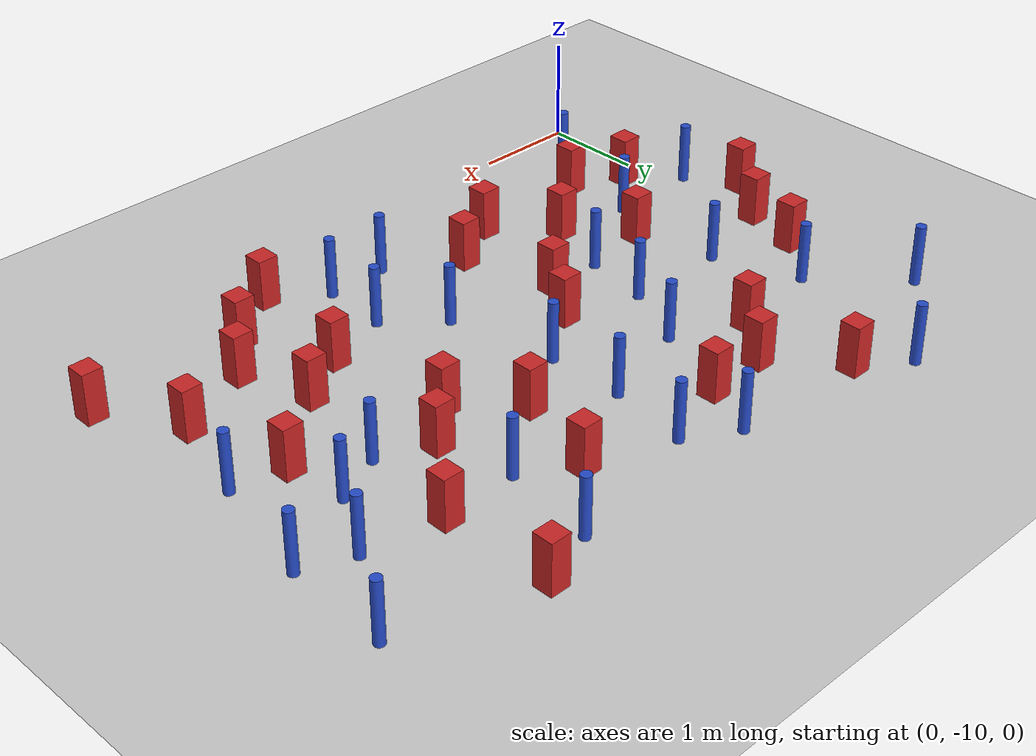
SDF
<sdf version="1.6">
 <world name="default">
  <model name="ground_plane">
   <static>1</static>
   <link name="link">
    <collision name="collision">
     <geometry><plane><normal>0 0 1</normal><size>100 100</size></plane></geometry>
     <surface><friction><ode><mu>100</mu><mu2>50</mu2></ode></friction></surface>
    </collision>
    <visual name="visual">
     <cast_shadows>0</cast_shadows>
     <geometry><plane><normal>0 0 1</normal><size>100 100</size></plane></geometry>
     <material>
      <ambient>1.0 1.0 1.0 1.0</ambient>
      <diffuse>0.8 0.8 0.8 1.0</diffuse>
      <specular>0.01 0.01 0.01 1.000000</specular>
     </material>
    </visual>
   </link>
  </model>
  <model name="pole_obstacle1">
   <static>true</static>
   <pose>3.07167220182 -7.02424409552 7.38925637345e-09 -8.47170692798e-08 1.24976765033e-08 -1.74513093019e-07</pose>
   <link name="link">
    <pose>0 0 0.3 0 -0 0</pose>
    <inertial>
     <mass>1</mass>
     <inertia><ixx>0.145833</ixx><ixy>0</ixy><ixz>0</ixz><iyy>0.145833</iyy><iyz>0</iyz><izz>0.125</izz></inertia>
    </inertial>
    <collision name="collision">
     <geometry><cylinder><radius>0.05</radius><length>.6</length></cylinder></geometry>
    </collision>
    <visual name="visual">
     <geometry><cylinder><radius>0.05</radius><length>.6</length></cylinder></geometry>
     <material>
      <script><name>Gazebo/Blue</name><uri>file://media/materials/scripts/gazebo.material</uri></script>
     </material>
    </visual>
   </link>
  </model>
  <model name="square_post_obstacle6">
   <static>true</static>
   <pose>5.20519081044 -6.04144490822 1.91545236811e-07 -7.35059704564e-06 1.12565212e-07 2.39332434364e-05</pose>
   <link name="link">
    <pose>0 0 0.25 0 -0 0</pose>
    <inertial>
     <mass>100</mass>
     <inertia>
      <ixx>0.166667</ixx>
      <ixy>0</ixy>
      <ixz>0</ixz>
      <iyy>0.166667</iyy>
      <iyz>0</iyz>
      <izz>0.166667</izz>
     </inertia>
    </inertial>
    <collision name="collision"><geometry><box><size>.2 .2 .5</size></box></geometry></collision>
    <visual name="visual">
     <geometry><box><size>.2 .2 .5</size></box></geometry>
     <material>
      <script><name>Gazebo/Red</name><uri>file://media/materials/scripts/gazebo.material</uri></script>
     </material>
    </visual>
   </link>
  </model>
  <model name="pole_obstacle4">
   <static>true</static>
   <pose>-0.179069154487 -8.40646391588 7.38925637345e-09 -8.47170692796e-08 1.24976764775e-08 -1.74513093034e-07</pose>
   <link name="link">
    <pose>0 0 0.3 0 -0 0</pose>
    <inertial>
     <mass>1</mass>
     <inertia><ixx>0.145833</ixx><ixy>0</ixy><ixz>0</ixz><iyy>0.145833</iyy><iyz>0</iyz><izz>0.125</izz></inertia>
    </inertial>
    <collision name="collision">
     <geometry><cylinder><radius>0.05</radius><length>.6</length></cylinder></geometry>
    </collision>
    <visual name="visual">
     <geometry><cylinder><radius>0.05</radius><length>.6</length></cylinder></geometry>
     <material>
      <script><name>Gazebo/Blue</name><uri>file://media/materials/scripts/gazebo.material</uri></script>
     </material>
    </visual>
   </link>
  </model>
  <model name="square_post_obstacle16">
   <static>true</static>
   <pose>1.85319820563 -5.76374676269 1.91545236811e-07 -7.35059704564e-06 1.12565212e-07 2.39332434364e-05</pose>
   <link name="link">
    <pose>0 0 0.25 0 -0 0</pose>
    <inertial>
     <mass>100</mass>
     <inertia>
      <ixx>0.166667</ixx>
      <ixy>0</ixy>
      <ixz>0</ixz>
      <iyy>0.166667</iyy>
      <iyz>0</iyz>
      <izz>0.166667</izz>
     </inertia>
    </inertial>
    <collision name="collision"><geometry><box><size>.2 .2 .5</size></box></geometry></collision>
    <visual name="visual">
     <geometry><box><size>.2 .2 .5</size></box></geometry>
     <material>
      <script><name>Gazebo/Red</name><uri>file://media/materials/scripts/gazebo.material</uri></script>
     </material>
    </visual>
   </link>
  </model>
  <model name="square_post_obstacle19">
   <static>true</static>
   <pose>5.15073080693 -4.96994061939 1.91545236811e-07 -7.35059704564e-06 1.12565212e-07 2.39332434364e-05</pose>
   <link name="link">
    <pose>0 0 0.25 0 -0 0</pose>
    <inertial>
     <mass>100</mass>
     <inertia>
      <ixx>0.166667</ixx>
      <ixy>0</ixy>
      <ixz>0</ixz>
      <iyy>0.166667</iyy>
      <iyz>0</iyz>
      <izz>0.166667</izz>
     </inertia>
    </inertial>
    <collision name="collision"><geometry><box><size>.2 .2 .5</size></box></geometry></collision>
    <visual name="visual">
     <geometry><box><size>.2 .2 .5</size></box></geometry>
     <material>
      <script><name>Gazebo/Red</name><uri>file://media/materials/scripts/gazebo.material</uri></script>
     </material>
    </visual>
   </link>
  </model>
  <model name="pole_obstacle13">
   <static>true</static>
   <pose>3.05042973627 -6.27608102626 7.38925637345e-09 -8.47170692798e-08 1.24976765033e-08 -1.74513093019e-07</pose>
   <link name="link">
    <pose>0 0 0.3 0 -0 0</pose>
    <inertial>
     <mass>1</mass>
     <inertia><ixx>0.145833</ixx><ixy>0</ixy><ixz>0</ixz><iyy>0.145833</iyy><iyz>0</iyz><izz>0.125</izz></inertia>
    </inertial>
    <collision name="collision">
     <geometry><cylinder><radius>0.05</radius><length>.6</length></cylinder></geometry>
    </collision>
    <visual name="visual">
     <geometry><cylinder><radius>0.05</radius><length>.6</length></cylinder></geometry>
     <material>
      <script><name>Gazebo/Blue</name><uri>file://media/materials/scripts/gazebo.material</uri></script>
     </material>
    </visual>
   </link>
  </model>
  <model name="square_post_obstacle22">
   <static>true</static>
   <pose>1.0284544931 -7.94580521152 1.91545236811e-07 -7.35059704564e-06 1.12565212e-07 2.39332434364e-05</pose>
   <link name="link">
    <pose>0 0 0.25 0 -0 0</pose>
    <inertial>
     <mass>100</mass>
     <inertia>
      <ixx>0.166667</ixx>
      <ixy>0</ixy>
      <ixz>0</ixz>
      <iyy>0.166667</iyy>
      <iyz>0</iyz>
      <izz>0.166667</izz>
     </inertia>
    </inertial>
    <collision name="collision"><geometry><box><size>.2 .2 .5</size></box></geometry></collision>
    <visual name="visual">
     <geometry><box><size>.2 .2 .5</size></box></geometry>
     <material>
      <script><name>Gazebo/Red</name><uri>file://media/materials/scripts/gazebo.material</uri></script>
     </material>
    </visual>
   </link>
  </model>
  <model name="square_post_obstacle30">
   <static>true</static>
   <pose>2.54692806546 -7.40260620274 1.91545236811e-07 -7.35059704564e-06 1.12565212e-07 2.39332434364e-05</pose>
   <link name="link">
    <pose>0 0 0.25 0 -0 0</pose>
    <inertial>
     <mass>100</mass>
     <inertia>
      <ixx>0.166667</ixx>
      <ixy>0</ixy>
      <ixz>0</ixz>
      <iyy>0.166667</iyy>
      <iyz>0</iyz>
      <izz>0.166667</izz>
     </inertia>
    </inertial>
    <collision name="collision"><geometry><box><size>.2 .2 .5</size></box></geometry></collision>
    <visual name="visual">
     <geometry><box><size>.2 .2 .5</size></box></geometry>
     <material>
      <script><name>Gazebo/Red</name><uri>file://media/materials/scripts/gazebo.material</uri></script>
     </material>
    </visual>
   </link>
  </model>
  <model name="pole_obstacle27">
   <static>true</static>
   <pose>1.7917339287 -7.20234265877 7.38925637345e-09 -8.47170692799e-08 1.24976765033e-08 -1.74513093018e-07</pose>
   <link name="link">
    <pose>0 0 0.3 0 -0 0</pose>
    <inertial>
     <mass>1</mass>
     <inertia><ixx>0.145833</ixx><ixy>0</ixy><ixz>0</ixz><iyy>0.145833</iyy><iyz>0</iyz><izz>0.125</izz></inertia>
    </inertial>
    <collision name="collision">
     <geometry><cylinder><radius>0.05</radius><length>.6</length></cylinder></geometry>
    </collision>
    <visual name="visual">
     <geometry><cylinder><radius>0.05</radius><length>.6</length></cylinder></geometry>
     <material>
      <script><name>Gazebo/Blue</name><uri>file://media/materials/scripts/gazebo.material</uri></script>
     </material>
    </visual>
   </link>
  </model>
  <model name="pole_obstacle33">
   <static>true</static>
   <pose>3.16674399643 -5.49947386391 7.38925637345e-09 -8.47170692798e-08 1.24976765033e-08 -1.74513093019e-07</pose>
   <link name="link">
    <pose>0 0 0.3 0 -0 0</pose>
    <inertial>
     <mass>1</mass>
     <inertia><ixx>0.145833</ixx><ixy>0</ixy><ixz>0</ixz><iyy>0.145833</iyy><iyz>0</iyz><izz>0.125</izz></inertia>
    </inertial>
    <collision name="collision">
     <geometry><cylinder><radius>0.05</radius><length>.6</length></cylinder></geometry>
    </collision>
    <visual name="visual">
     <geometry><cylinder><radius>0.05</radius><length>.6</length></cylinder></geometry>
     <material>
      <script><name>Gazebo/Blue</name><uri>file://media/materials/scripts/gazebo.material</uri></script>
     </material>
    </visual>
   </link>
  </model>
  <model name="pole_obstacle34">
   <static>true</static>
   <pose>0.72934746978 -8.38764439104 7.38925637345e-09 -8.47170692797e-08 1.249767648e-08 -1.74513093032e-07</pose>
   <link name="link">
    <pose>0 0 0.3 0 -0 0</pose>
    <inertial>
     <mass>1</mass>
     <inertia><ixx>0.145833</ixx><ixy>0</ixy><ixz>0</ixz><iyy>0.145833</iyy><iyz>0</iyz><izz>0.125</izz></inertia>
    </inertial>
    <collision name="collision">
     <geometry><cylinder><radius>0.05</radius><length>.6</length></cylinder></geometry>
    </collision>
    <visual name="visual">
     <geometry><cylinder><radius>0.05</radius><length>.6</length></cylinder></geometry>
     <material>
      <script><name>Gazebo/Blue</name><uri>file://media/materials/scripts/gazebo.material</uri></script>
     </material>
    </visual>
   </link>
  </model>
  <model name="pole_obstacle36">
   <static>true</static>
   <pose>0.872948246072 -4.82727050828 7.38925637345e-09 -8.471706928e-08 1.24976765086e-08 -1.74513093015e-07</pose>
   <link name="link">
    <pose>0 0 0.3 0 -0 0</pose>
    <inertial>
     <mass>1</mass>
     <inertia><ixx>0.145833</ixx><ixy>0</ixy><ixz>0</ixz><iyy>0.145833</iyy><iyz>0</iyz><izz>0.125</izz></inertia>
    </inertial>
    <collision name="collision">
     <geometry><cylinder><radius>0.05</radius><length>.6</length></cylinder></geometry>
    </collision>
    <visual name="visual">
     <geometry><cylinder><radius>0.05</radius><length>.6</length></cylinder></geometry>
     <material>
      <script><name>Gazebo/Blue</name><uri>file://media/materials/scripts/gazebo.material</uri></script>
     </material>
    </visual>
   </link>
  </model>
  <model name="pole_obstacle42">
   <static>true</static>
   <pose>5.59073341891 -6.79634661429 7.38925637345e-09 -8.47170692796e-08 1.24976764786e-08 -1.74513093032e-07</pose>
   <link name="link">
    <pose>0 0 0.3 0 -0 0</pose>
    <inertial>
     <mass>1</mass>
     <inertia><ixx>0.145833</ixx><ixy>0</ixy><ixz>0</ixz><iyy>0.145833</iyy><iyz>0</iyz><izz>0.125</izz></inertia>
    </inertial>
    <collision name="collision">
     <geometry><cylinder><radius>0.05</radius><length>.6</length></cylinder></geometry>
    </collision>
    <visual name="visual">
     <geometry><cylinder><radius>0.05</radius><length>.6</length></cylinder></geometry>
     <material>
      <script><name>Gazebo/Blue</name><uri>file://media/materials/scripts/gazebo.material</uri></script>
     </material>
    </visual>
   </link>
  </model>
  <model name="square_post_obstacle40">
   <static>true</static>
   <pose>1.46371274313 -6.21064876037 1.91545236811e-07 -7.35059704564e-06 1.12565212e-07 2.39332434364e-05</pose>
   <link name="link">
    <pose>0 0 0.25 0 -0 0</pose>
    <inertial>
     <mass>100</mass>
     <inertia>
      <ixx>0.166667</ixx>
      <ixy>0</ixy>
      <ixz>0</ixz>
      <iyy>0.166667</iyy>
      <iyz>0</iyz>
      <izz>0.166667</izz>
     </inertia>
    </inertial>
    <collision name="collision"><geometry><box><size>.2 .2 .5</size></box></geometry></collision>
    <visual name="visual">
     <geometry><box><size>.2 .2 .5</size></box></geometry>
     <material>
      <script><name>Gazebo/Red</name><uri>file://media/materials/scripts/gazebo.material</uri></script>
     </material>
    </visual>
   </link>
  </model>
  <model name="square_post_obstacle43">
   <static>true</static>
   <pose>4.4447152985 -8.29233198857 1.91545236811e-07 -7.35059704564e-06 1.12565212e-07 2.39332434364e-05</pose>
   <link name="link">
    <pose>0 0 0.25 0 -0 0</pose>
    <inertial>
     <mass>100</mass>
     <inertia>
      <ixx>0.166667</ixx>
      <ixy>0</ixy>
      <ixz>0</ixz>
      <iyy>0.166667</iyy>
      <iyz>0</iyz>
      <izz>0.166667</izz>
     </inertia>
    </inertial>
    <collision name="collision"><geometry><box><size>.2 .2 .5</size></box></geometry></collision>
    <visual name="visual">
     <geometry><box><size>.2 .2 .5</size></box></geometry>
     <material>
      <script><name>Gazebo/Red</name><uri>file://media/materials/scripts/gazebo.material</uri></script>
     </material>
    </visual>
   </link>
  </model>
  <model name="pole_obstacle50">
   <static>true</static>
   <pose>-0.202530588919 -5.60241062444 7.38925637345e-09 -8.47170692799e-08 1.2497676507e-08 -1.74513093018e-07</pose>
   <link name="link">
    <pose>0 0 0.3 0 -0 0</pose>
    <inertial>
     <mass>1</mass>
     <inertia><ixx>0.145833</ixx><ixy>0</ixy><ixz>0</ixz><iyy>0.145833</iyy><iyz>0</iyz><izz>0.125</izz></inertia>
    </inertial>
    <collision name="collision">
     <geometry><cylinder><radius>0.05</radius><length>.6</length></cylinder></geometry>
    </collision>
    <visual name="visual">
     <geometry><cylinder><radius>0.05</radius><length>.6</length></cylinder></geometry>
     <material>
      <script><name>Gazebo/Blue</name><uri>file://media/materials/scripts/gazebo.material</uri></script>
     </material>
    </visual>
   </link>
  </model>
  <model name="square_post_obstacle50">
   <static>true</static>
   <pose>5.67406200529 -7.36464617674 1.91545236811e-07 -7.35059704564e-06 1.12565212e-07 2.39332434364e-05</pose>
   <link name="link">
    <pose>0 0 0.25 0 -0 0</pose>
    <inertial>
     <mass>100</mass>
     <inertia>
      <ixx>0.166667</ixx>
      <ixy>0</ixy>
      <ixz>0</ixz>
      <iyy>0.166667</iyy>
      <iyz>0</iyz>
      <izz>0.166667</izz>
     </inertia>
    </inertial>
    <collision name="collision"><geometry><box><size>.2 .2 .5</size></box></geometry></collision>
    <visual name="visual">
     <geometry><box><size>.2 .2 .5</size></box></geometry>
     <material>
      <script><name>Gazebo/Red</name><uri>file://media/materials/scripts/gazebo.material</uri></script>
     </material>
    </visual>
   </link>
  </model>
  <model name="pole_obstacle57">
   <static>true</static>
   <pose>6.16708319687 -7.48787995456 7.38925637345e-09 -8.47170692796e-08 1.24976764786e-08 -1.74513093032e-07</pose>
   <link name="link">
    <pose>0 0 0.3 0 -0 0</pose>
    <inertial>
     <mass>1</mass>
     <inertia><ixx>0.145833</ixx><ixy>0</ixy><ixz>0</ixz><iyy>0.145833</iyy><iyz>0</iyz><izz>0.125</izz></inertia>
    </inertial>
    <collision name="collision">
     <geometry><cylinder><radius>0.05</radius><length>.6</length></cylinder></geometry>
    </collision>
    <visual name="visual">
     <geometry><cylinder><radius>0.05</radius><length>.6</length></cylinder></geometry>
     <material>
      <script><name>Gazebo/Blue</name><uri>file://media/materials/scripts/gazebo.material</uri></script>
     </material>
    </visual>
   </link>
  </model>
  <model name="square_post_obstacle61">
   <static>true</static>
   <pose>1.48745465127 -8.4871591218 1.91545236811e-07 -7.35059704564e-06 1.12565212e-07 2.39332434364e-05</pose>
   <link name="link">
    <pose>0 0 0.25 0 -0 0</pose>
    <inertial>
     <mass>100</mass>
     <inertia>
      <ixx>0.166667</ixx>
      <ixy>0</ixy>
      <ixz>0</ixz>
      <iyy>0.166667</iyy>
      <iyz>0</iyz>
      <izz>0.166667</izz>
     </inertia>
    </inertial>
    <collision name="collision"><geometry><box><size>.2 .2 .5</size></box></geometry></collision>
    <visual name="visual">
     <geometry><box><size>.2 .2 .5</size></box></geometry>
     <material>
      <script><name>Gazebo/Red</name><uri>file://media/materials/scripts/gazebo.material</uri></script>
     </material>
    </visual>
   </link>
  </model>
  <model name="pole_obstacle62">
   <static>true</static>
   <pose>4.58420811512 -5.17796546262 7.38925637345e-09 -8.47170692796e-08 1.24976764786e-08 -1.74513093032e-07</pose>
   <link name="link">
    <pose>0 0 0.3 0 -0 0</pose>
    <inertial>
     <mass>1</mass>
     <inertia><ixx>0.145833</ixx><ixy>0</ixy><ixz>0</ixz><iyy>0.145833</iyy><iyz>0</iyz><izz>0.125</izz></inertia>
    </inertial>
    <collision name="collision">
     <geometry><cylinder><radius>0.05</radius><length>.6</length></cylinder></geometry>
    </collision>
    <visual name="visual">
     <geometry><cylinder><radius>0.05</radius><length>.6</length></cylinder></geometry>
     <material>
      <script><name>Gazebo/Blue</name><uri>file://media/materials/scripts/gazebo.material</uri></script>
     </material>
    </visual>
   </link>
  </model>
  <model name="square_post_obstacle70">
   <static>true</static>
   <pose>5.16973890118 -8.66780034604 1.91545236811e-07 -7.35059704564e-06 1.12565212e-07 2.39332434364e-05</pose>
   <link name="link">
    <pose>0 0 0.25 0 -0 0</pose>
    <inertial>
     <mass>100</mass>
     <inertia>
      <ixx>0.166667</ixx>
      <ixy>0</ixy>
      <ixz>0</ixz>
      <iyy>0.166667</iyy>
      <iyz>0</iyz>
      <izz>0.166667</izz>
     </inertia>
    </inertial>
    <collision name="collision"><geometry><box><size>.2 .2 .5</size></box></geometry></collision>
    <visual name="visual">
     <geometry><box><size>.2 .2 .5</size></box></geometry>
     <material>
      <script><name>Gazebo/Red</name><uri>file://media/materials/scripts/gazebo.material</uri></script>
     </material>
    </visual>
   </link>
  </model>
  <model name="square_post_obstacle71">
   <static>true</static>
   <pose>1.34676959427 -5.13734319269 1.91545236811e-07 -7.35059704564e-06 1.12565212e-07 2.39332434364e-05</pose>
   <link name="link">
    <pose>0 0 0.25 0 -0 0</pose>
    <inertial>
     <mass>100</mass>
     <inertia>
      <ixx>0.166667</ixx>
      <ixy>0</ixy>
      <ixz>0</ixz>
      <iyy>0.166667</iyy>
      <iyz>0</iyz>
      <izz>0.166667</izz>
     </inertia>
    </inertial>
    <collision name="collision"><geometry><box><size>.2 .2 .5</size></box></geometry></collision>
    <visual name="visual">
     <geometry><box><size>.2 .2 .5</size></box></geometry>
     <material>
      <script><name>Gazebo/Red</name><uri>file://media/materials/scripts/gazebo.material</uri></script>
     </material>
    </visual>
   </link>
  </model>
  <model name="pole_obstacle78">
   <static>true</static>
   <pose>3.78217881104 -8.51591306245 7.38925637345e-09 -8.47170692793e-08 1.24976764408e-08 -1.74513093041e-07</pose>
   <link name="link">
    <pose>0 0 0.3 0 -0 0</pose>
    <inertial>
     <mass>1</mass>
     <inertia><ixx>0.145833</ixx><ixy>0</ixy><ixz>0</ixz><iyy>0.145833</iyy><iyz>0</iyz><izz>0.125</izz></inertia>
    </inertial>
    <collision name="collision">
     <geometry><cylinder><radius>0.05</radius><length>.6</length></cylinder></geometry>
    </collision>
    <visual name="visual">
     <geometry><cylinder><radius>0.05</radius><length>.6</length></cylinder></geometry>
     <material>
      <script><name>Gazebo/Blue</name><uri>file://media/materials/scripts/gazebo.material</uri></script>
     </material>
    </visual>
   </link>
  </model>
  <model name="square_post_obstacle77">
   <static>true</static>
   <pose>4.94451475012 -7.9813809898 1.91545236811e-07 -7.35059704564e-06 1.12565212e-07 2.39332434364e-05</pose>
   <link name="link">
    <pose>0 0 0.25 0 -0 0</pose>
    <inertial>
     <mass>100</mass>
     <inertia>
      <ixx>0.166667</ixx>
      <ixy>0</ixy>
      <ixz>0</ixz>
      <iyy>0.166667</iyy>
      <iyz>0</iyz>
      <izz>0.166667</izz>
     </inertia>
    </inertial>
    <collision name="collision"><geometry><box><size>.2 .2 .5</size></box></geometry></collision>
    <visual name="visual">
     <geometry><box><size>.2 .2 .5</size></box></geometry>
     <material>
      <script><name>Gazebo/Red</name><uri>file://media/materials/scripts/gazebo.material</uri></script>
     </material>
    </visual>
   </link>
  </model>
  <model name="pole_obstacle82">
   <static>true</static>
   <pose>3.29477183406 -8.0785001464 7.38925637345e-09 -8.47170692793e-08 1.24976764408e-08 -1.74513093041e-07</pose>
   <link name="link">
    <pose>0 0 0.3 0 -0 0</pose>
    <inertial>
     <mass>1</mass>
     <inertia><ixx>0.145833</ixx><ixy>0</ixy><ixz>0</ixz><iyy>0.145833</iyy><iyz>0</iyz><izz>0.125</izz></inertia>
    </inertial>
    <collision name="collision">
     <geometry><cylinder><radius>0.05</radius><length>.6</length></cylinder></geometry>
    </collision>
    <visual name="visual">
     <geometry><cylinder><radius>0.05</radius><length>.6</length></cylinder></geometry>
     <material>
      <script><name>Gazebo/Blue</name><uri>file://media/materials/scripts/gazebo.material</uri></script>
     </material>
    </visual>
   </link>
  </model>
  <model name="square_post_obstacle80">
   <static>true</static>
   <pose>2.25746732367 -7.83495870771 1.91545236811e-07 -7.35059704564e-06 1.12565212e-07 2.39332434364e-05</pose>
   <link name="link">
    <pose>0 0 0.25 0 -0 0</pose>
    <inertial>
     <mass>100</mass>
     <inertia>
      <ixx>0.166667</ixx>
      <ixy>0</ixy>
      <ixz>0</ixz>
      <iyy>0.166667</iyy>
      <iyz>0</iyz>
      <izz>0.166667</izz>
     </inertia>
    </inertial>
    <collision name="collision"><geometry><box><size>.2 .2 .5</size></box></geometry></collision>
    <visual name="visual">
     <geometry><box><size>.2 .2 .5</size></box></geometry>
     <material>
      <script><name>Gazebo/Red</name><uri>file://media/materials/scripts/gazebo.material</uri></script>
     </material>
    </visual>
   </link>
  </model>
  <model name="pole_obstacle87">
   <static>true</static>
   <pose>4.45620937504 -6.08960041685 7.38925637345e-09 -8.47170692796e-08 1.24976764786e-08 -1.74513093032e-07</pose>
   <link name="link">
    <pose>0 0 0.3 0 -0 0</pose>
    <inertial>
     <mass>1</mass>
     <inertia><ixx>0.145833</ixx><ixy>0</ixy><ixz>0</ixz><iyy>0.145833</iyy><iyz>0</iyz><izz>0.125</izz></inertia>
    </inertial>
    <collision name="collision">
     <geometry><cylinder><radius>0.05</radius><length>.6</length></cylinder></geometry>
    </collision>
    <visual name="visual">
     <geometry><cylinder><radius>0.05</radius><length>.6</length></cylinder></geometry>
     <material>
      <script><name>Gazebo/Blue</name><uri>file://media/materials/scripts/gazebo.material</uri></script>
     </material>
    </visual>
   </link>
  </model>
  <model name="square_post_obstacle90">
   <static>true</static>
   <pose>4.82314137201 -9.10501403395 1.91545236811e-07 -7.35059704564e-06 1.12565212e-07 2.39332434364e-05</pose>
   <link name="link">
    <pose>0 0 0.25 0 -0 0</pose>
    <inertial>
     <mass>100</mass>
     <inertia>
      <ixx>0.166667</ixx>
      <ixy>0</ixy>
      <ixz>0</ixz>
      <iyy>0.166667</iyy>
      <iyz>0</iyz>
      <izz>0.166667</izz>
     </inertia>
    </inertial>
    <collision name="collision"><geometry><box><size>.2 .2 .5</size></box></geometry></collision>
    <visual name="visual">
     <geometry><box><size>.2 .2 .5</size></box></geometry>
     <material>
      <script><name>Gazebo/Red</name><uri>file://media/materials/scripts/gazebo.material</uri></script>
     </material>
    </visual>
   </link>
  </model>
  <model name="square_post_obstacle93">
   <static>true</static>
   <pose>6.3673652353 -9.0815596947 1.91545236811e-07 -7.35059704564e-06 1.12565212e-07 2.39332434364e-05</pose>
   <link name="link">
    <pose>0 0 0.25 0 -0 0</pose>
    <inertial>
     <mass>100</mass>
     <inertia>
      <ixx>0.166667</ixx>
      <ixy>0</ixy>
      <ixz>0</ixz>
      <iyy>0.166667</iyy>
      <iyz>0</iyz>
      <izz>0.166667</izz>
     </inertia>
    </inertial>
    <collision name="collision"><geometry><box><size>.2 .2 .5</size></box></geometry></collision>
    <visual name="visual">
     <geometry><box><size>.2 .2 .5</size></box></geometry>
     <material>
      <script><name>Gazebo/Red</name><uri>file://media/materials/scripts/gazebo.material</uri></script>
     </material>
    </visual>
   </link>
  </model>
  <model name="square_post_obstacle97">
   <static>true</static>
   <pose>3.98963768774 -5.77004372097 1.91545236811e-07 -7.35059704564e-06 1.12565212e-07 2.39332434364e-05</pose>
   <link name="link">
    <pose>0 0 0.25 0 -0 0</pose>
    <inertial>
     <mass>100</mass>
     <inertia>
      <ixx>0.166667</ixx>
      <ixy>0</ixy>
      <ixz>0</ixz>
      <iyy>0.166667</iyy>
      <iyz>0</iyz>
      <izz>0.166667</izz>
     </inertia>
    </inertial>
    <collision name="collision"><geometry><box><size>.2 .2 .5</size></box></geometry></collision>
    <visual name="visual">
     <geometry><box><size>.2 .2 .5</size></box></geometry>
     <material>
      <script><name>Gazebo/Red</name><uri>file://media/materials/scripts/gazebo.material</uri></script>
     </material>
    </visual>
   </link>
  </model>
  <model name="pole_obstacle118">
   <static>true</static>
   <pose>6.408367629 -6.38468957832 7.38925637345e-09 -8.47170692796e-08 1.24976764786e-08 -1.74513093032e-07</pose>
   <link name="link">
    <pose>0 0 0.3 0 -0 0</pose>
    <inertial>
     <mass>1</mass>
     <inertia><ixx>0.145833</ixx><ixy>0</ixy><ixz>0</ixz><iyy>0.145833</iyy><iyz>0</iyz><izz>0.125</izz></inertia>
    </inertial>
    <collision name="collision">
     <geometry><cylinder><radius>0.05</radius><length>.6</length></cylinder></geometry>
    </collision>
    <visual name="visual">
     <geometry><cylinder><radius>0.05</radius><length>.6</length></cylinder></geometry>
     <material>
      <script><name>Gazebo/Blue</name><uri>file://media/materials/scripts/gazebo.material</uri></script>
     </material>
    </visual>
   </link>
  </model>
  <model name="pole_obstacle121">
   <static>true</static>
   <pose>0.50471819085 -6.35527948346 7.38925637345e-09 -8.47170692799e-08 1.24976765073e-08 -1.74513093015e-07</pose>
   <link name="link">
    <pose>0 0 0.3 0 -0 0</pose>
    <inertial>
     <mass>1</mass>
     <inertia><ixx>0.145833</ixx><ixy>0</ixy><ixz>0</ixz><iyy>0.145833</iyy><iyz>0</iyz><izz>0.125</izz></inertia>
    </inertial>
    <collision name="collision">
     <geometry><cylinder><radius>0.05</radius><length>.6</length></cylinder></geometry>
    </collision>
    <visual name="visual">
     <geometry><cylinder><radius>0.05</radius><length>.6</length></cylinder></geometry>
     <material>
      <script><name>Gazebo/Blue</name><uri>file://media/materials/scripts/gazebo.material</uri></script>
     </material>
    </visual>
   </link>
  </model>
  <model name="square_post_obstacle113">
   <static>true</static>
   <pose>2.51793605629 -8.73282725435 1.91545236811e-07 -7.35059704564e-06 1.12565212e-07 2.39332434364e-05</pose>
   <link name="link">
    <pose>0 0 0.25 0 -0 0</pose>
    <inertial>
     <mass>100</mass>
     <inertia>
      <ixx>0.166667</ixx>
      <ixy>0</ixy>
      <ixz>0</ixz>
      <iyy>0.166667</iyy>
      <iyz>0</iyz>
      <izz>0.166667</izz>
     </inertia>
    </inertial>
    <collision name="collision"><geometry><box><size>.2 .2 .5</size></box></geometry></collision>
    <visual name="visual">
     <geometry><box><size>.2 .2 .5</size></box></geometry>
     <material>
      <script><name>Gazebo/Red</name><uri>file://media/materials/scripts/gazebo.material</uri></script>
     </material>
    </visual>
   </link>
  </model>
  <model name="square_post_obstacle124">
   <static>true</static>
   <pose>1.99035214186 -9.02303512465 1.91545236811e-07 -7.35059704564e-06 1.12565212e-07 2.39332434364e-05</pose>
   <link name="link">
    <pose>0 0 0.25 0 -0 0</pose>
    <inertial>
     <mass>100</mass>
     <inertia>
      <ixx>0.166667</ixx>
      <ixy>0</ixy>
      <ixz>0</ixz>
      <iyy>0.166667</iyy>
      <iyz>0</iyz>
      <izz>0.166667</izz>
     </inertia>
    </inertial>
    <collision name="collision"><geometry><box><size>.2 .2 .5</size></box></geometry></collision>
    <visual name="visual">
     <geometry><box><size>.2 .2 .5</size></box></geometry>
     <material>
      <script><name>Gazebo/Red</name><uri>file://media/materials/scripts/gazebo.material</uri></script>
     </material>
    </visual>
   </link>
  </model>
  <model name="square_post_obstacle138">
   <static>true</static>
   <pose>-0.0584548094158 -7.40298901806 1.91545236811e-07 -7.35059704564e-06 1.12565212e-07 2.39332434364e-05</pose>
   <link name="link">
    <pose>0 0 0.25 0 -0 0</pose>
    <inertial>
     <mass>100</mass>
     <inertia>
      <ixx>0.166667</ixx>
      <ixy>0</ixy>
      <ixz>0</ixz>
      <iyy>0.166667</iyy>
      <iyz>0</iyz>
      <izz>0.166667</izz>
     </inertia>
    </inertial>
    <collision name="collision"><geometry><box><size>.2 .2 .5</size></box></geometry></collision>
    <visual name="visual">
     <geometry><box><size>.2 .2 .5</size></box></geometry>
     <material>
      <script><name>Gazebo/Red</name><uri>file://media/materials/scripts/gazebo.material</uri></script>
     </material>
    </visual>
   </link>
  </model>
  <model name="pole_obstacle150">
   <static>true</static>
   <pose>2.11231546477 -6.54658414264 7.38925637345e-09 -8.47170692798e-08 1.24976765033e-08 -1.74513093019e-07</pose>
   <link name="link">
    <pose>0 0 0.3 0 -0 0</pose>
    <inertial>
     <mass>1</mass>
     <inertia><ixx>0.145833</ixx><ixy>0</ixy><ixz>0</ixz><iyy>0.145833</iyy><iyz>0</iyz><izz>0.125</izz></inertia>
    </inertial>
    <collision name="collision">
     <geometry><cylinder><radius>0.05</radius><length>.6</length></cylinder></geometry>
    </collision>
    <visual name="visual">
     <geometry><cylinder><radius>0.05</radius><length>.6</length></cylinder></geometry>
     <material>
      <script><name>Gazebo/Blue</name><uri>file://media/materials/scripts/gazebo.material</uri></script>
     </material>
    </visual>
   </link>
  </model>
  <model name="pole_obstacle155">
   <static>true</static>
   <pose>2.68877873247 -5.21526729956 7.38925637345e-09 -8.47170692798e-08 1.24976765033e-08 -1.74513093019e-07</pose>
   <link name="link">
    <pose>0 0 0.3 0 -0 0</pose>
    <inertial>
     <mass>1</mass>
     <inertia><ixx>0.145833</ixx><ixy>0</ixy><ixz>0</ixz><iyy>0.145833</iyy><iyz>0</iyz><izz>0.125</izz></inertia>
    </inertial>
    <collision name="collision">
     <geometry><cylinder><radius>0.05</radius><length>.6</length></cylinder></geometry>
    </collision>
    <visual name="visual">
     <geometry><cylinder><radius>0.05</radius><length>.6</length></cylinder></geometry>
     <material>
      <script><name>Gazebo/Blue</name><uri>file://media/materials/scripts/gazebo.material</uri></script>
     </material>
    </visual>
   </link>
  </model>
  <model name="square_post_obstacle151">
   <static>true</static>
   <pose>4.27060972398 -9.48860783254 1.91545236811e-07 -7.35059704564e-06 1.12565212e-07 2.39332434364e-05</pose>
   <link name="link">
    <pose>0 0 0.25 0 -0 0</pose>
    <inertial>
     <mass>100</mass>
     <inertia>
      <ixx>0.166667</ixx>
      <ixy>0</ixy>
      <ixz>0</ixz>
      <iyy>0.166667</iyy>
      <iyz>0</iyz>
      <izz>0.166667</izz>
     </inertia>
    </inertial>
    <collision name="collision"><geometry><box><size>.2 .2 .5</size></box></geometry></collision>
    <visual name="visual">
     <geometry><box><size>.2 .2 .5</size></box></geometry>
     <material>
      <script><name>Gazebo/Red</name><uri>file://media/materials/scripts/gazebo.material</uri></script>
     </material>
    </visual>
   </link>
  </model>
  <model name="pole_obstacle157">
   <static>true</static>
   <pose>6.44110659515 -5.37999566998 7.38925637345e-09 -8.47170692796e-08 1.24976764786e-08 -1.74513093032e-07</pose>
   <link name="link">
    <pose>0 0 0.3 0 -0 0</pose>
    <inertial>
     <mass>1</mass>
     <inertia><ixx>0.145833</ixx><ixy>0</ixy><ixz>0</ixz><iyy>0.145833</iyy><iyz>0</iyz><izz>0.125</izz></inertia>
    </inertial>
    <collision name="collision">
     <geometry><cylinder><radius>0.05</radius><length>.6</length></cylinder></geometry>
    </collision>
    <visual name="visual">
     <geometry><cylinder><radius>0.05</radius><length>.6</length></cylinder></geometry>
     <material>
      <script><name>Gazebo/Blue</name><uri>file://media/materials/scripts/gazebo.material</uri></script>
     </material>
    </visual>
   </link>
  </model>
  <model name="square_post_obstacle153">
   <static>true</static>
   <pose>0.267850486805 -8.81215879656 1.91545236811e-07 -7.35059704564e-06 1.12565212e-07 2.39332434364e-05</pose>
   <link name="link">
    <pose>0 0 0.25 0 -0 0</pose>
    <inertial>
     <mass>100</mass>
     <inertia>
      <ixx>0.166667</ixx>
      <ixy>0</ixy>
      <ixz>0</ixz>
      <iyy>0.166667</iyy>
      <iyz>0</iyz>
      <izz>0.166667</izz>
     </inertia>
    </inertial>
    <collision name="collision"><geometry><box><size>.2 .2 .5</size></box></geometry></collision>
    <visual name="visual">
     <geometry><box><size>.2 .2 .5</size></box></geometry>
     <material>
      <script><name>Gazebo/Red</name><uri>file://media/materials/scripts/gazebo.material</uri></script>
     </material>
    </visual>
   </link>
  </model>
  <model name="square_post_obstacle163">
   <static>true</static>
   <pose>4.23924488918 -7.13405969219 1.91545236811e-07 -7.35059704564e-06 1.12565212e-07 2.39332434364e-05</pose>
   <link name="link">
    <pose>0 0 0.25 0 -0 0</pose>
    <inertial>
     <mass>100</mass>
     <inertia>
      <ixx>0.166667</ixx>
      <ixy>0</ixy>
      <ixz>0</ixz>
      <iyy>0.166667</iyy>
      <iyz>0</iyz>
      <izz>0.166667</izz>
     </inertia>
    </inertial>
    <collision name="collision"><geometry><box><size>.2 .2 .5</size></box></geometry></collision>
    <visual name="visual">
     <geometry><box><size>.2 .2 .5</size></box></geometry>
     <material>
      <script><name>Gazebo/Red</name><uri>file://media/materials/scripts/gazebo.material</uri></script>
     </material>
    </visual>
   </link>
  </model>
  <model name="pole_obstacle176">
   <static>true</static>
   <pose>5.9372823366 -6.19194671938 7.38925637345e-09 -8.47170692796e-08 1.24976764786e-08 -1.74513093032e-07</pose>
   <link name="link">
    <pose>0 0 0.3 0 -0 0</pose>
    <inertial>
     <mass>1</mass>
     <inertia><ixx>0.145833</ixx><ixy>0</ixy><ixz>0</ixz><iyy>0.145833</iyy><iyz>0</iyz><izz>0.125</izz></inertia>
    </inertial>
    <collision name="collision">
     <geometry><cylinder><radius>0.05</radius><length>.6</length></cylinder></geometry>
    </collision>
    <visual name="visual">
     <geometry><cylinder><radius>0.05</radius><length>.6</length></cylinder></geometry>
     <material>
      <script><name>Gazebo/Blue</name><uri>file://media/materials/scripts/gazebo.material</uri></script>
     </material>
    </visual>
   </link>
  </model>
  <model name="square_post_obstacle165">
   <static>true</static>
   <pose>2.47513412316 -5.7236032804 1.91545236811e-07 -7.35059704564e-06 1.12565212e-07 2.39332434364e-05</pose>
   <link name="link">
    <pose>0 0 0.25 0 -0 0</pose>
    <inertial>
     <mass>100</mass>
     <inertia>
      <ixx>0.166667</ixx>
      <ixy>0</ixy>
      <ixz>0</ixz>
      <iyy>0.166667</iyy>
      <iyz>0</iyz>
      <izz>0.166667</izz>
     </inertia>
    </inertial>
    <collision name="collision"><geometry><box><size>.2 .2 .5</size></box></geometry></collision>
    <visual name="visual">
     <geometry><box><size>.2 .2 .5</size></box></geometry>
     <material>
      <script><name>Gazebo/Red</name><uri>file://media/materials/scripts/gazebo.material</uri></script>
     </material>
    </visual>
   </link>
  </model>
  <model name="square_post_obstacle172">
   <static>true</static>
   <pose>3.73695616724 -6.62466809279 1.91545236811e-07 -7.35059704564e-06 1.12565212e-07 2.39332434364e-05</pose>
   <link name="link">
    <pose>0 0 0.25 0 -0 0</pose>
    <inertial>
     <mass>100</mass>
     <inertia>
      <ixx>0.166667</ixx>
      <ixy>0</ixy>
      <ixz>0</ixz>
      <iyy>0.166667</iyy>
      <iyz>0</iyz>
      <izz>0.166667</izz>
     </inertia>
    </inertial>
    <collision name="collision"><geometry><box><size>.2 .2 .5</size></box></geometry></collision>
    <visual name="visual">
     <geometry><box><size>.2 .2 .5</size></box></geometry>
     <material>
      <script><name>Gazebo/Red</name><uri>file://media/materials/scripts/gazebo.material</uri></script>
     </material>
    </visual>
   </link>
  </model>
  <model name="pole_obstacle187">
   <static>true</static>
   <pose>3.16023843769 -9.17482353648 7.38925637345e-09 -8.47170692793e-08 1.24976764408e-08 -1.74513093041e-07</pose>
   <link name="link">
    <pose>0 0 0.3 0 -0 0</pose>
    <inertial>
     <mass>1</mass>
     <inertia><ixx>0.145833</ixx><ixy>0</ixy><ixz>0</ixz><iyy>0.145833</iyy><iyz>0</iyz><izz>0.125</izz></inertia>
    </inertial>
    <collision name="collision">
     <geometry><cylinder><radius>0.05</radius><length>.6</length></cylinder></geometry>
    </collision>
    <visual name="visual">
     <geometry><cylinder><radius>0.05</radius><length>.6</length></cylinder></geometry>
     <material>
      <script><name>Gazebo/Blue</name><uri>file://media/materials/scripts/gazebo.material</uri></script>
     </material>
    </visual>
   </link>
  </model>
  <model name="square_post_obstacle195">
   <static>true</static>
   <pose>0.78403551559 -9.05250915238 1.91545236811e-07 -7.35059704564e-06 1.12565212e-07 2.39332434364e-05</pose>
   <link name="link">
    <pose>0 0 0.25 0 -0 0</pose>
    <inertial>
     <mass>100</mass>
     <inertia>
      <ixx>0.166667</ixx>
      <ixy>0</ixy>
      <ixz>0</ixz>
      <iyy>0.166667</iyy>
      <iyz>0</iyz>
      <izz>0.166667</izz>
     </inertia>
    </inertial>
    <collision name="collision"><geometry><box><size>.2 .2 .5</size></box></geometry></collision>
    <visual name="visual">
     <geometry><box><size>.2 .2 .5</size></box></geometry>
     <material>
      <script><name>Gazebo/Red</name><uri>file://media/materials/scripts/gazebo.material</uri></script>
     </material>
    </visual>
   </link>
  </model>
  <model name="square_post_obstacle201">
   <static>true</static>
   <pose>4.62622824013 -6.77512079416 1.91545236811e-07 -7.35059704564e-06 1.12565212e-07 2.39332434364e-05</pose>
   <link name="link">
    <pose>0 0 0.25 0 -0 0</pose>
    <inertial>
     <mass>100</mass>
     <inertia>
      <ixx>0.166667</ixx>
      <ixy>0</ixy>
      <ixz>0</ixz>
      <iyy>0.166667</iyy>
      <iyz>0</iyz>
      <izz>0.166667</izz>
     </inertia>
    </inertial>
    <collision name="collision"><geometry><box><size>.2 .2 .5</size></box></geometry></collision>
    <visual name="visual">
     <geometry><box><size>.2 .2 .5</size></box></geometry>
     <material>
      <script><name>Gazebo/Red</name><uri>file://media/materials/scripts/gazebo.material</uri></script>
     </material>
    </visual>
   </link>
  </model>
  <model name="square_post_obstacle203">
   <static>true</static>
   <pose>5.92959934457 -8.33013015871 1.91545236811e-07 -7.35059704564e-06 1.12565212e-07 2.39332434364e-05</pose>
   <link name="link">
    <pose>0 0 0.25 0 -0 0</pose>
    <inertial>
     <mass>100</mass>
     <inertia>
      <ixx>0.166667</ixx>
      <ixy>0</ixy>
      <ixz>0</ixz>
      <iyy>0.166667</iyy>
      <iyz>0</iyz>
      <izz>0.166667</izz>
     </inertia>
    </inertial>
    <collision name="collision"><geometry><box><size>.2 .2 .5</size></box></geometry></collision>
    <visual name="visual">
     <geometry><box><size>.2 .2 .5</size></box></geometry>
     <material>
      <script><name>Gazebo/Red</name><uri>file://media/materials/scripts/gazebo.material</uri></script>
     </material>
    </visual>
   </link>
  </model>
  <model name="pole_obstacle188">
   <static>true</static>
   <pose>0.799970067632 -7.1835719472 7.38925637345e-09 -8.471706928e-08 1.24976765086e-08 -1.74513093015e-07</pose>
   <link name="link">
    <pose>0 0 0.3 0 -0 0</pose>
    <inertial>
     <mass>1</mass>
     <inertia><ixx>0.145833</ixx><ixy>0</ixy><ixz>0</ixz><iyy>0.145833</iyy><iyz>0</iyz><izz>0.125</izz></inertia>
    </inertial>
    <collision name="collision">
     <geometry><cylinder><radius>0.05</radius><length>.6</length></cylinder></geometry>
    </collision>
    <visual name="visual">
     <geometry><cylinder><radius>0.05</radius><length>.6</length></cylinder></geometry>
     <material>
      <script><name>Gazebo/Blue</name><uri>file://media/materials/scripts/gazebo.material</uri></script>
     </material>
    </visual>
   </link>
  </model>
  <model name="pole_obstacle199">
   <static>true</static>
   <pose>0.474033853165 -9.46612322851 7.38925637345e-09 -8.47170692797e-08 1.24976764852e-08 -1.74513093028e-07</pose>
   <link name="link">
    <pose>0 0 0.3 0 -0 0</pose>
    <inertial>
     <mass>1</mass>
     <inertia><ixx>0.145833</ixx><ixy>0</ixy><ixz>0</ixz><iyy>0.145833</iyy><iyz>0</iyz><izz>0.125</izz></inertia>
    </inertial>
    <collision name="collision">
     <geometry><cylinder><radius>0.05</radius><length>.6</length></cylinder></geometry>
    </collision>
    <visual name="visual">
     <geometry><cylinder><radius>0.05</radius><length>.6</length></cylinder></geometry>
     <material>
      <script><name>Gazebo/Blue</name><uri>file://media/materials/scripts/gazebo.material</uri></script>
     </material>
    </visual>
   </link>
  </model>
  <model name="pole_obstacle205">
   <static>true</static>
   <pose>3.75633400515 -9.16141736878 7.38925637345e-09 -8.47170692793e-08 1.24976764408e-08 -1.74513093041e-07</pose>
   <link name="link">
    <pose>0 0 0.3 0 -0 0</pose>
    <inertial>
     <mass>1</mass>
     <inertia><ixx>0.145833</ixx><ixy>0</ixy><ixz>0</ixz><iyy>0.145833</iyy><iyz>0</iyz><izz>0.125</izz></inertia>
    </inertial>
    <collision name="collision">
     <geometry><cylinder><radius>0.05</radius><length>.6</length></cylinder></geometry>
    </collision>
    <visual name="visual">
     <geometry><cylinder><radius>0.05</radius><length>.6</length></cylinder></geometry>
     <material>
      <script><name>Gazebo/Blue</name><uri>file://media/materials/scripts/gazebo.material</uri></script>
     </material>
    </visual>
   </link>
  </model>
  <model name="pole_obstacle216">
   <static>true</static>
   <pose>1.68497648713 -7.85296260782 7.38925637345e-09 -8.47170692799e-08 1.24976765033e-08 -1.74513093018e-07</pose>
   <link name="link">
    <pose>0 0 0.3 0 -0 0</pose>
    <inertial>
     <mass>1</mass>
     <inertia><ixx>0.145833</ixx><ixy>0</ixy><ixz>0</ixz><iyy>0.145833</iyy><iyz>0</iyz><izz>0.125</izz></inertia>
    </inertial>
    <collision name="collision">
     <geometry><cylinder><radius>0.05</radius><length>.6</length></cylinder></geometry>
    </collision>
    <visual name="visual">
     <geometry><cylinder><radius>0.05</radius><length>.6</length></cylinder></geometry>
     <material>
      <script><name>Gazebo/Blue</name><uri>file://media/materials/scripts/gazebo.material</uri></script>
     </material>
    </visual>
   </link>
  </model>
  <model name="pole_obstacle217">
   <static>true</static>
   <pose>5.11356123829 -7.01120516883 7.38925637345e-09 -8.47170692796e-08 1.24976764786e-08 -1.74513093032e-07</pose>
   <link name="link">
    <pose>0 0 0.3 0 -0 0</pose>
    <inertial>
     <mass>1</mass>
     <inertia><ixx>0.145833</ixx><ixy>0</ixy><ixz>0</ixz><iyy>0.145833</iyy><iyz>0</iyz><izz>0.125</izz></inertia>
    </inertial>
    <collision name="collision">
     <geometry><cylinder><radius>0.05</radius><length>.6</length></cylinder></geometry>
    </collision>
    <visual name="visual">
     <geometry><cylinder><radius>0.05</radius><length>.6</length></cylinder></geometry>
     <material>
      <script><name>Gazebo/Blue</name><uri>file://media/materials/scripts/gazebo.material</uri></script>
     </material>
    </visual>
   </link>
  </model>
  <model name="square_post_obstacle204">
   <static>true</static>
   <pose>0.10412722493 -6.82920911503 1.91545236811e-07 -7.35059704564e-06 1.12565212e-07 2.39332434364e-05</pose>
   <link name="link">
    <pose>0 0 0.25 0 -0 0</pose>
    <inertial>
     <mass>100</mass>
     <inertia>
      <ixx>0.166667</ixx>
      <ixy>0</ixy>
      <ixz>0</ixz>
      <iyy>0.166667</iyy>
      <iyz>0</iyz>
      <izz>0.166667</izz>
     </inertia>
    </inertial>
    <collision name="collision"><geometry><box><size>.2 .2 .5</size></box></geometry></collision>
    <visual name="visual">
     <geometry><box><size>.2 .2 .5</size></box></geometry>
     <material>
      <script><name>Gazebo/Red</name><uri>file://media/materials/scripts/gazebo.material</uri></script>
     </material>
    </visual>
   </link>
  </model>
  <model name="square_post_obstacle208">
   <static>true</static>
   <pose>-0.438700998775 -7.89485835258 1.91545236811e-07 -7.35059704564e-06 1.12565212e-07 2.39332434364e-05</pose>
   <link name="link">
    <pose>0 0 0.25 0 -0 0</pose>
    <inertial>
     <mass>100</mass>
     <inertia>
      <ixx>0.166667</ixx>
      <ixy>0</ixy>
      <ixz>0</ixz>
      <iyy>0.166667</iyy>
      <iyz>0</iyz>
      <izz>0.166667</izz>
     </inertia>
    </inertial>
    <collision name="collision"><geometry><box><size>.2 .2 .5</size></box></geometry></collision>
    <visual name="visual">
     <geometry><box><size>.2 .2 .5</size></box></geometry>
     <material>
      <script><name>Gazebo/Red</name><uri>file://media/materials/scripts/gazebo.material</uri></script>
     </material>
    </visual>
   </link>
  </model>
 </world>
</sdf>
